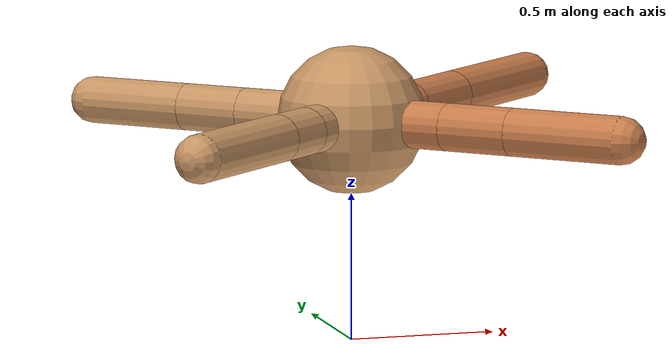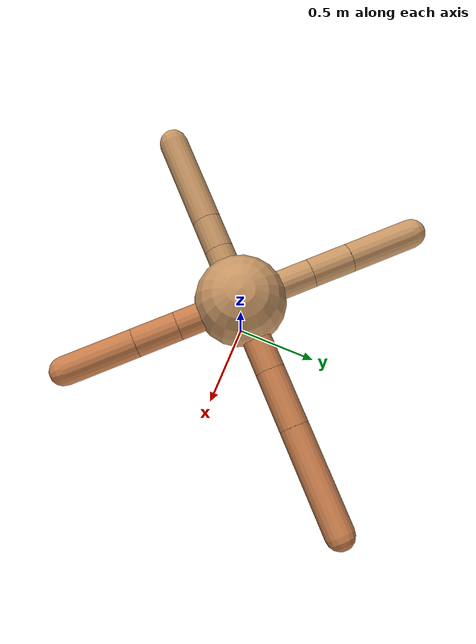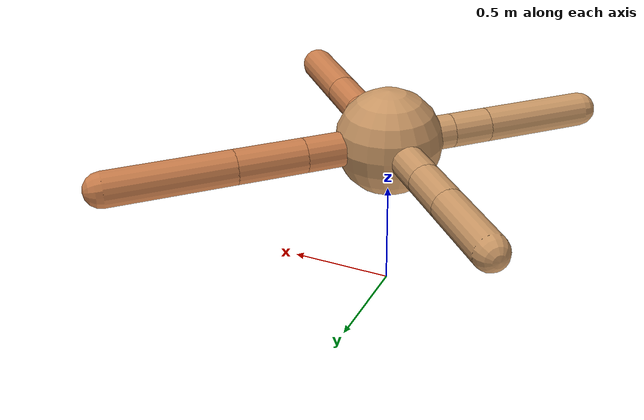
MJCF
<mujoco model="ant">
  <compiler angle="degree" coordinate="local" inertiafromgeom="true" />
  <option integrator="RK4" timestep="0.01" />
  <custom>
    <numeric data="0.0 0.0 0.55 1.0 0.0 0.0 0.0 0.0 1.0 0.0 -1.0 0.0 -1.0 0.0 1.0" name="init_qpos" />
  </custom>
  <default>
    <joint armature="1" damping="1" limited="true" />
    <geom conaffinity="0" condim="3" density="5.0" friction="1.5 0.1 0.1" margin="0.01" rgba="0.8 0.6 0.4 1" />
  </default>
  <worldbody>
    <body name="torso" pos="0 0 0.75">
      <geom name="torso_geom" pos="0 0 0" size="0.25" type="sphere" />

      <body name="front_left_leg" pos="0 0 0">
        <geom fromto="0.0 0.0 0.0 0.28846476336823373 0.28846476336823373 0.0" name="aux_1_geom" size="0.08" type="capsule" rgba=".8 .5 .3 1" />
        <body name="aux_1" pos="0.28846476336823373 0.28846476336823373 0.0">
          <joint axis="0 0 1" name="hip_1" pos="0.0 0.0 0.0" range="-40 40" type="hinge" />
          <geom fromto="0.0 0.0 0.0 0.22572182991378728 0.22572182991378728 0.0" name="left_leg_geom" size="0.08" type="capsule" rgba=".8 .5 .3 1" />
          <body pos="0.22572182991378728 0.22572182991378728 0.0" name="front_left_foot">
            <joint axis="-1 1 0" name="ankle_1" pos="0.0 0.0 0.0" range="30 100" type="hinge" />
            <geom fromto="0.0 0.0 0.0 0.40887629636028877 0.40887629636028877 0.0" name="left_ankle_geom" size="0.08" type="capsule" rgba=".8 .5 .3 1" />
          </body>
        </body>
      </body>
      <body name="front_right_leg" pos="0 0 0">
        <geom fromto="0.0 0.0 0.0 -0.2909405071518492 0.2909405071518492 0.0" name="aux_2_geom" size="0.08" type="capsule" />
        <body name="aux_2" pos="-0.2909405071518492 0.2909405071518492 0.0">
          <joint axis="0 0 1" name="hip_2" pos="0.0 0.0 0.0" range="-40 40" type="hinge" />
          <geom fromto="0.0 0.0 0.0 -0.16245862957952328 0.16245862957952328 0.0" name="right_leg_geom" size="0.08" type="capsule" />
          <body pos="-0.16245862957952328 0.16245862957952328 0.0" name="front_right_foot">
            <joint axis="1 1 0" name="ankle_2" pos="0.0 0.0 0.0" range="-100 -30" type="hinge" />
            <geom fromto="0.0 0.0 0.0 -0.2635529615893783 0.2635529615893783 0.0" name="right_ankle_geom" size="0.08" type="capsule" />
          </body>
        </body>
      </body>
      <body name="left_back_leg" pos="0 0 0">
        <geom fromto="0.0 0.0 0.0 -0.220198411875516 -0.220198411875516 0.0" name="aux_3_geom" size="0.08" type="capsule" />
        <body name="aux_3" pos="-0.220198411875516 -0.220198411875516 0.0">
          <joint axis="0 0 1" name="hip_3" pos="0.0 0.0 0.0" range="-40 40" type="hinge" />
          <geom fromto="0.0 0.0 0.0 -0.12999983136584536 -0.12999983136584536 0.0" name="back_leg_geom" size="0.08" type="capsule" />
          <body pos="-0.12999983136584536 -0.12999983136584536 0.0" name="left_back_foot">
            <joint axis="-1 1 0" name="ankle_3" pos="0.0 0.0 0.0" range="-100 -30" type="hinge" />
            <geom fromto="0.0 0.0 0.0 -0.3581566213134771 -0.3581566213134771 0.0" name="third_ankle_geom" size="0.08" type="capsule" />
          </body>
        </body>
      </body>
      <body name="right_back_leg" pos="0 0 0">
        <geom fromto="0.0 0.0 0.0 0.25650331365955753 -0.25650331365955753 0.0" name="aux_4_geom" size="0.08" type="capsule" rgba=".8 .5 .3 1" />
        <body name="aux_4" pos="0.25650331365955753 -0.25650331365955753 0.0">
          <joint axis="0 0 1" name="hip_4" pos="0.0 0.0 0.0" range="-40 40" type="hinge" />
          <geom fromto="0.0 0.0 0.0 0.17080246440800667 -0.17080246440800667 0.0" name="rightback_leg_geom" size="0.08" type="capsule" rgba=".8 .5 .3 1" />
          <body pos="0.17080246440800667 -0.17080246440800667 0.0" name="right_back_foot">
            <joint axis="1 1 0" name="ankle_4" pos="0.0 0.0 0.0" range="30 100" type="hinge" />
            <geom fromto="0.0 0.0 0.0 0.28141980781990095 -0.28141980781990095 0.0" name="fourth_ankle_geom" size="0.08" type="capsule" rgba=".8 .5 .3 1" />
          </body>
        </body>
      </body>
    </body>
  </worldbody>
  <actuator>
    <motor ctrllimited="true" ctrlrange="-1.0 1.0" joint="hip_4" gear="150" />
    <motor ctrllimited="true" ctrlrange="-1.0 1.0" joint="ankle_4" gear="150" />
    <motor ctrllimited="true" ctrlrange="-1.0 1.0" joint="hip_1" gear="150" />
    <motor ctrllimited="true" ctrlrange="-1.0 1.0" joint="ankle_1" gear="150" />
    <motor ctrllimited="true" ctrlrange="-1.0 1.0" joint="hip_2" gear="150" />
    <motor ctrllimited="true" ctrlrange="-1.0 1.0" joint="ankle_2" gear="150" />
    <motor ctrllimited="true" ctrlrange="-1.0 1.0" joint="hip_3" gear="150" />
    <motor ctrllimited="true" ctrlrange="-1.0 1.0" joint="ankle_3" gear="150" />
  </actuator>
</mujoco>
